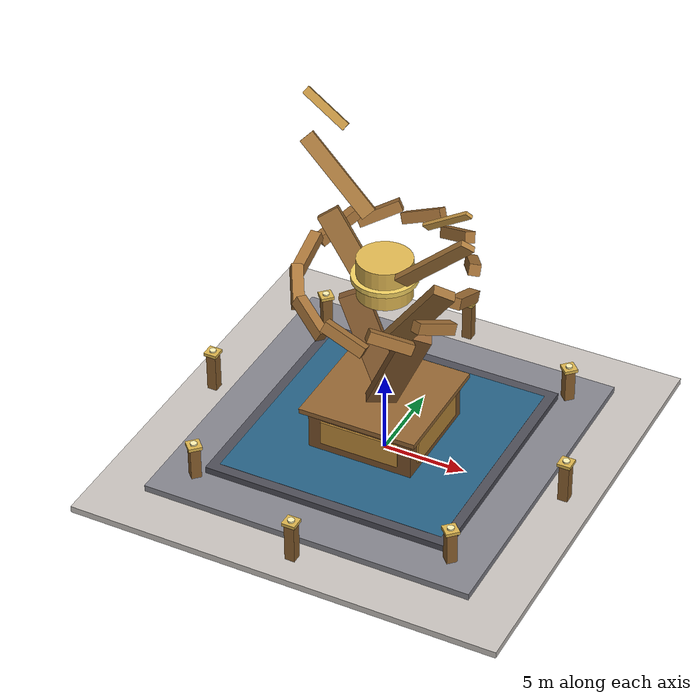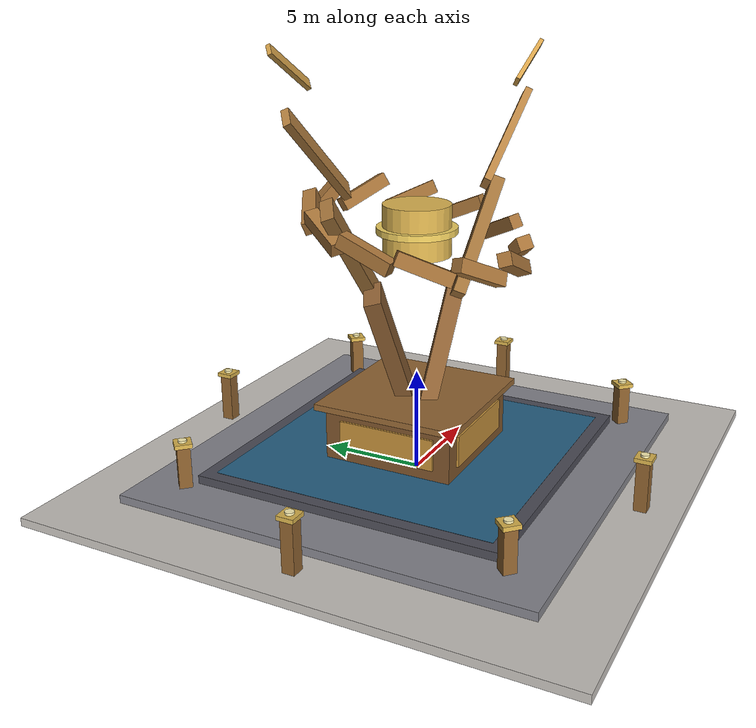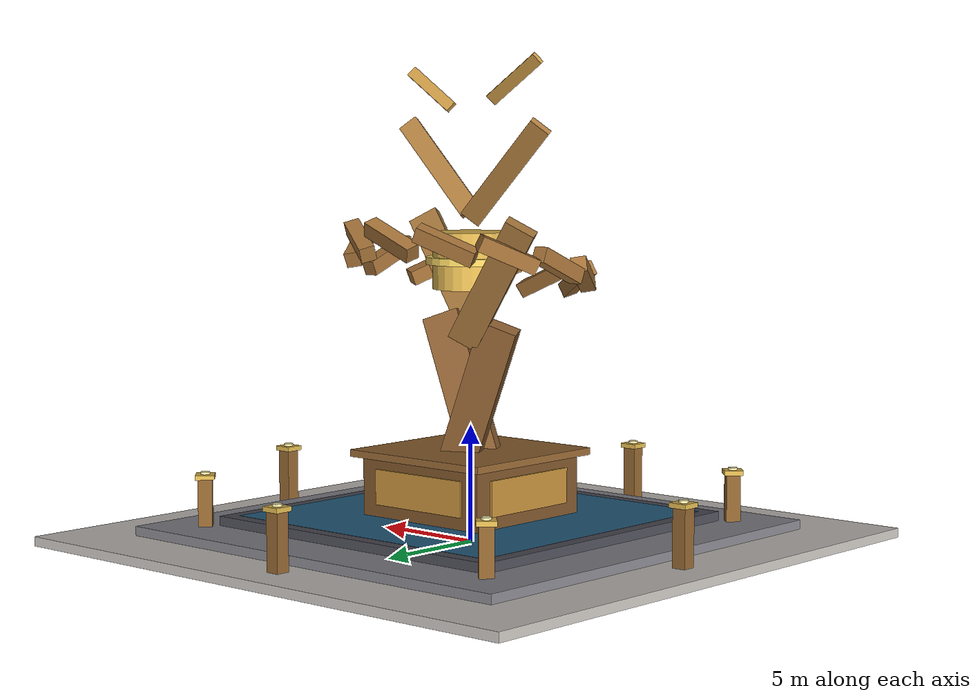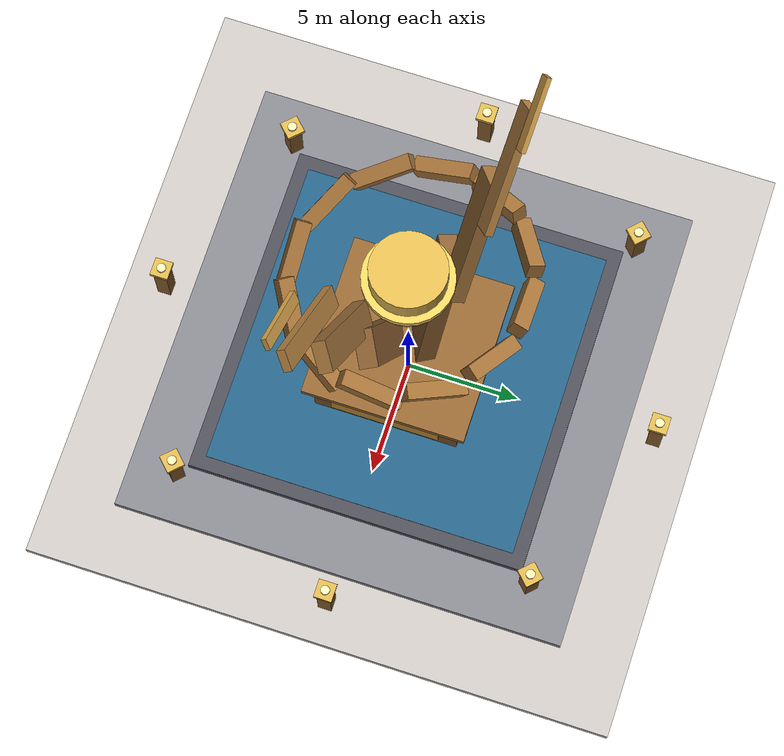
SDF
<?xml version="1.0" ?>
<sdf version="1.8">
  <model name="giant_bronze_sculpture_monument">
    <static>true</static>
    <link name="bronze_monument_link">
      <!-- 物理碰撞剛體 (三層花崗岩台座與中央基柱) -->
      <collision name="base_step1_col"><pose>0 0 0.2 0 0 0</pose><geometry><box><size>26.0 26.0 0.4</size></box></geometry></collision>
      <collision name="base_step2_col"><pose>0 0 0.6 0 0 0</pose><geometry><box><size>20.0 20.0 0.4</size></box></geometry></collision>
      <collision name="base_step3_col"><pose>0 0 1.0 0 0 0</pose><geometry><box><size>15.0 15.0 0.4</size></box></geometry></collision>
      <collision name="core_pedestal_col"><pose>0 0 2.5 0 0 0</pose><geometry><box><size>6.4 6.4 2.6</size></box></geometry></collision>
      <collision name="spire_trunk_col"><pose>0 0 6.5 0 0 0</pose><geometry><cylinder><radius>2.2</radius><length>6.0</length></cylinder></geometry></collision>
      <!-- 1. 三層八角同心花崗岩親水廣場基座 -->
      <visual name="base_step1_vis"><pose>0 0 0.2 0 0 0</pose><geometry><box><size>26.0 26.0 0.4</size></box></geometry><material><ambient>0.72 0.70 0.68 1</ambient><diffuse>0.78 0.76 0.74 1</diffuse><specular>0.3 0.3 0.3 1</specular></material></visual>
      <visual name="base_step2_vis"><pose>0 0 0.6 0 0 0</pose><geometry><box><size>20.0 20.0 0.4</size></box></geometry><material><ambient>0.45 0.45 0.48 1</ambient><diffuse>0.52 0.52 0.55 1</diffuse><specular>0.4 0.4 0.4 1</specular></material></visual>
      <visual name="base_step3_vis"><pose>0 0 1.0 0 0 0</pose><geometry><box><size>15.0 15.0 0.4</size></box></geometry><material><ambient>0.25 0.25 0.28 1</ambient><diffuse>0.30 0.30 0.34 1</diffuse><specular>0.6 0.6 0.6 1</specular></material></visual>
      <!-- 親水倒影鏡面水池池水 -->
      <visual name="reflecting_pool"><pose>0 0 1.21 0 0 0</pose><geometry><box><size>13.8 13.8 0.01</size></box></geometry><material><ambient>0.10 0.28 0.38 0.92</ambient><diffuse>0.15 0.38 0.52 0.92</diffuse><specular>0.95 0.98 1.0 1</specular></material></visual>
      <!-- 2. 中央重型鑄造青銅基柱與銘刻銘板 -->
      <visual name="bronze_core_pedestal"><pose>0 0 2.5 0 0 0</pose><geometry><box><size>6.4 6.4 2.6</size></box></geometry><material><ambient>0.32 0.20 0.10 1</ambient><diffuse>0.48 0.32 0.16 1</diffuse><specular>0.75 0.55 0.25 1</specular></material></visual>
      <visual name="pedestal_cornice"><pose>0 0 3.85 0 0 0</pose><geometry><box><size>7.2 7.2 0.3</size></box></geometry><material><ambient>0.40 0.26 0.12 1</ambient><diffuse>0.58 0.40 0.20 1</diffuse><specular>0.85 0.65 0.30 1</specular></material></visual>
      <visual name="plaque_s"><pose>0 -3.25 2.5 0 0 0</pose><geometry><box><size>4.8 0.12 1.5</size></box></geometry><material><ambient>0.55 0.38 0.15 1</ambient><diffuse>0.75 0.55 0.22 1</diffuse><specular>0.9 0.7 0.3 1</specular></material></visual>
      <visual name="plaque_n"><pose>0 3.25 2.5 0 0 0</pose><geometry><box><size>4.8 0.12 1.5</size></box></geometry><material><ambient>0.55 0.38 0.15 1</ambient><diffuse>0.75 0.55 0.22 1</diffuse><specular>0.9 0.7 0.3 1</specular></material></visual>
      <visual name="plaque_e"><pose>3.25 0 2.5 0 0 0</pose><geometry><box><size>0.12 4.8 1.5</size></box></geometry><material><ambient>0.55 0.38 0.15 1</ambient><diffuse>0.75 0.55 0.22 1</diffuse><specular>0.9 0.7 0.3 1</specular></material></visual>
      <visual name="plaque_w"><pose>-3.25 0 2.5 0 0 0</pose><geometry><box><size>0.12 4.8 1.5</size></box></geometry><material><ambient>0.55 0.38 0.15 1</ambient><diffuse>0.75 0.55 0.22 1</diffuse><specular>0.9 0.7 0.3 1</specular></material></visual>
      <!-- 3. 超級雙曲青銅神翼 (19.5m 壯麗青銅主羽翼) -->
      <visual name="wing_a_lower"><pose>1.2 -0.8 6.5 0.25 0.35 0.5</pose><geometry><box><size>1.6 0.8 6.5</size></box></geometry><material><ambient>0.36 0.22 0.12 1</ambient><diffuse>0.56 0.38 0.20 1</diffuse><specular>0.85 0.65 0.30 1</specular></material></visual>
      <visual name="wing_a_mid"><pose>2.8 -1.8 11.2 0.40 0.50 0.6</pose><geometry><box><size>1.3 0.6 6.0</size></box></geometry><material><ambient>0.42 0.28 0.14 1</ambient><diffuse>0.62 0.44 0.22 1</diffuse><specular>0.90 0.70 0.35 1</specular></material></visual>
      <visual name="wing_a_tip"><pose>4.2 -2.6 15.8 0.55 0.65 0.7</pose><geometry><box><size>0.9 0.35 5.5</size></box></geometry><material><ambient>0.48 0.32 0.16 1</ambient><diffuse>0.70 0.50 0.25 1</diffuse><specular>0.95 0.75 0.40 1</specular></material></visual>
      <visual name="wing_a_crest"><pose>5.2 -3.2 19.2 0.70 0.80 0.8</pose><geometry><box><size>0.5 0.2 3.0</size></box></geometry><material><ambient>0.58 0.42 0.18 1</ambient><diffuse>0.82 0.62 0.28 1</diffuse><specular>1.0 0.85 0.50 1</specular></material></visual>
      <!-- 翅膀 B (西北向巨型羽翼) -->
      <visual name="wing_b_lower"><pose>-1.2 0.8 6.5 -0.25 -0.35 0.5</pose><geometry><box><size>1.6 0.8 6.5</size></box></geometry><material><ambient>0.36 0.22 0.12 1</ambient><diffuse>0.56 0.38 0.20 1</diffuse><specular>0.85 0.65 0.30 1</specular></material></visual>
      <visual name="wing_b_mid"><pose>-2.8 1.8 11.2 -0.40 -0.50 0.6</pose><geometry><box><size>1.3 0.6 6.0</size></box></geometry><material><ambient>0.42 0.28 0.14 1</ambient><diffuse>0.62 0.44 0.22 1</diffuse><specular>0.90 0.70 0.35 1</specular></material></visual>
      <visual name="wing_b_tip"><pose>-4.2 2.6 15.8 -0.55 -0.65 0.7</pose><geometry><box><size>0.9 0.35 5.5</size></box></geometry><material><ambient>0.48 0.32 0.16 1</ambient><diffuse>0.70 0.50 0.25 1</diffuse><specular>0.95 0.75 0.40 1</specular></material></visual>
      <visual name="wing_b_crest"><pose>-5.2 3.2 19.5 -0.70 -0.80 0.8</pose><geometry><box><size>0.5 0.2 3.0</size></box></geometry><material><ambient>0.58 0.42 0.18 1</ambient><diffuse>0.82 0.62 0.28 1</diffuse><specular>1.0 0.85 0.50 1</specular></material></visual>
      <!-- 4. 巨型空中青銅莫比烏斯環 (直徑 10m 貫通天穹之環) -->
      <visual name="ring_seg_0"><pose>4.800 0.000 12.000 0.000 0.4 1.571</pose><geometry><box><size>2.6 0.65 0.65</size></box></geometry><material><ambient>0.42 0.28 0.14 1</ambient><diffuse>0.65 0.45 0.22 1</diffuse><specular>0.88 0.70 0.35 1</specular></material></visual>
      <visual name="ring_seg_1"><pose>4.157 2.400 12.525 0.175 0.4 2.094</pose><geometry><box><size>2.6 0.65 0.65</size></box></geometry><material><ambient>0.42 0.28 0.14 1</ambient><diffuse>0.65 0.45 0.22 1</diffuse><specular>0.88 0.70 0.35 1</specular></material></visual>
      <visual name="ring_seg_2"><pose>2.400 4.157 12.909 0.303 0.4 2.618</pose><geometry><box><size>2.6 0.65 0.65</size></box></geometry><material><ambient>0.42 0.28 0.14 1</ambient><diffuse>0.65 0.45 0.22 1</diffuse><specular>0.88 0.70 0.35 1</specular></material></visual>
      <visual name="ring_seg_3"><pose>0.000 4.800 13.050 0.350 0.4 3.142</pose><geometry><box><size>2.6 0.65 0.65</size></box></geometry><material><ambient>0.42 0.28 0.14 1</ambient><diffuse>0.65 0.45 0.22 1</diffuse><specular>0.88 0.70 0.35 1</specular></material></visual>
      <visual name="ring_seg_4"><pose>-2.400 4.157 12.909 0.303 0.4 3.665</pose><geometry><box><size>2.6 0.65 0.65</size></box></geometry><material><ambient>0.42 0.28 0.14 1</ambient><diffuse>0.65 0.45 0.22 1</diffuse><specular>0.88 0.70 0.35 1</specular></material></visual>
      <visual name="ring_seg_5"><pose>-4.157 2.400 12.525 0.175 0.4 4.189</pose><geometry><box><size>2.6 0.65 0.65</size></box></geometry><material><ambient>0.42 0.28 0.14 1</ambient><diffuse>0.65 0.45 0.22 1</diffuse><specular>0.88 0.70 0.35 1</specular></material></visual>
      <visual name="ring_seg_6"><pose>-4.800 0.000 12.000 0.000 0.4 4.712</pose><geometry><box><size>2.6 0.65 0.65</size></box></geometry><material><ambient>0.42 0.28 0.14 1</ambient><diffuse>0.65 0.45 0.22 1</diffuse><specular>0.88 0.70 0.35 1</specular></material></visual>
      <visual name="ring_seg_7"><pose>-4.157 -2.400 11.475 -0.175 0.4 5.236</pose><geometry><box><size>2.6 0.65 0.65</size></box></geometry><material><ambient>0.42 0.28 0.14 1</ambient><diffuse>0.65 0.45 0.22 1</diffuse><specular>0.88 0.70 0.35 1</specular></material></visual>
      <visual name="ring_seg_8"><pose>-2.400 -4.157 11.091 -0.303 0.4 5.760</pose><geometry><box><size>2.6 0.65 0.65</size></box></geometry><material><ambient>0.42 0.28 0.14 1</ambient><diffuse>0.65 0.45 0.22 1</diffuse><specular>0.88 0.70 0.35 1</specular></material></visual>
      <visual name="ring_seg_9"><pose>-0.000 -4.800 10.950 -0.350 0.4 6.283</pose><geometry><box><size>2.6 0.65 0.65</size></box></geometry><material><ambient>0.42 0.28 0.14 1</ambient><diffuse>0.65 0.45 0.22 1</diffuse><specular>0.88 0.70 0.35 1</specular></material></visual>
      <visual name="ring_seg_10"><pose>2.400 -4.157 11.091 -0.303 0.4 6.807</pose><geometry><box><size>2.6 0.65 0.65</size></box></geometry><material><ambient>0.42 0.28 0.14 1</ambient><diffuse>0.65 0.45 0.22 1</diffuse><specular>0.88 0.70 0.35 1</specular></material></visual>
      <visual name="ring_seg_11"><pose>4.157 -2.400 11.475 -0.175 0.4 7.330</pose><geometry><box><size>2.6 0.65 0.65</size></box></geometry><material><ambient>0.42 0.28 0.14 1</ambient><diffuse>0.65 0.45 0.22 1</diffuse><specular>0.88 0.70 0.35 1</specular></material></visual>
      <!-- 5. 核心拋光青銅晶球 ("新竹科技核心", 直徑 3.2m 耀眼青銅反射球) -->
      <visual name="bronze_core_sphere"><pose>0 0 12.0 0 0 0</pose><geometry><cylinder><radius>1.6</radius><length>2.4</length></cylinder></geometry><material><ambient>0.62 0.46 0.18 1</ambient><diffuse>0.88 0.72 0.32 1</diffuse><specular>1.0 0.95 0.70 1</specular></material></visual>
      <visual name="sphere_equator_band"><pose>0 0 12.0 0 0 0</pose><geometry><cylinder><radius>1.9</radius><length>0.3</length></cylinder></geometry><material><ambient>0.75 0.60 0.25 1</ambient><diffuse>0.95 0.82 0.38 1</diffuse><emissive>0.25 0.18 0.05 1</emissive></material></visual>
      <!-- 6. 八方青銅立柱與光雕基座 -->
      <collision name="stele_col_0"><pose>11.200 0.000 1.6 0 0 0.000</pose><geometry><box><size>0.6 0.6 2.4</size></box></geometry></collision>
      <visual name="stele_vis_0"><pose>11.200 0.000 1.6 0 0 0.000</pose><geometry><box><size>0.6 0.6 2.4</size></box></geometry><material><ambient>0.38 0.24 0.12 1</ambient><diffuse>0.55 0.38 0.18 1</diffuse><specular>0.8 0.6 0.3 1</specular></material></visual>
      <visual name="stele_cap_0"><pose>11.200 0.000 2.9 0 0 0.000</pose><geometry><box><size>0.8 0.8 0.2</size></box></geometry><material><ambient>0.65 0.50 0.20 1</ambient><diffuse>0.85 0.70 0.30 1</diffuse><specular>0.9 0.8 0.4 1</specular></material></visual>
      <visual name="stele_light_0"><pose>11.200 0.000 3.05 0 0 0</pose><geometry><cylinder><radius>0.2</radius><length>0.1</length></cylinder></geometry><material><ambient>0.9 0.85 0.6 1</ambient><diffuse>1.0 0.95 0.7 1</diffuse><emissive>0.8 0.7 0.3 1</emissive></material></visual>
      <collision name="stele_col_1"><pose>7.920 7.920 1.6 0 0 0.785</pose><geometry><box><size>0.6 0.6 2.4</size></box></geometry></collision>
      <visual name="stele_vis_1"><pose>7.920 7.920 1.6 0 0 0.785</pose><geometry><box><size>0.6 0.6 2.4</size></box></geometry><material><ambient>0.38 0.24 0.12 1</ambient><diffuse>0.55 0.38 0.18 1</diffuse><specular>0.8 0.6 0.3 1</specular></material></visual>
      <visual name="stele_cap_1"><pose>7.920 7.920 2.9 0 0 0.785</pose><geometry><box><size>0.8 0.8 0.2</size></box></geometry><material><ambient>0.65 0.50 0.20 1</ambient><diffuse>0.85 0.70 0.30 1</diffuse><specular>0.9 0.8 0.4 1</specular></material></visual>
      <visual name="stele_light_1"><pose>7.920 7.920 3.05 0 0 0</pose><geometry><cylinder><radius>0.2</radius><length>0.1</length></cylinder></geometry><material><ambient>0.9 0.85 0.6 1</ambient><diffuse>1.0 0.95 0.7 1</diffuse><emissive>0.8 0.7 0.3 1</emissive></material></visual>
      <collision name="stele_col_2"><pose>0.000 11.200 1.6 0 0 1.571</pose><geometry><box><size>0.6 0.6 2.4</size></box></geometry></collision>
      <visual name="stele_vis_2"><pose>0.000 11.200 1.6 0 0 1.571</pose><geometry><box><size>0.6 0.6 2.4</size></box></geometry><material><ambient>0.38 0.24 0.12 1</ambient><diffuse>0.55 0.38 0.18 1</diffuse><specular>0.8 0.6 0.3 1</specular></material></visual>
      <visual name="stele_cap_2"><pose>0.000 11.200 2.9 0 0 1.571</pose><geometry><box><size>0.8 0.8 0.2</size></box></geometry><material><ambient>0.65 0.50 0.20 1</ambient><diffuse>0.85 0.70 0.30 1</diffuse><specular>0.9 0.8 0.4 1</specular></material></visual>
      <visual name="stele_light_2"><pose>0.000 11.200 3.05 0 0 0</pose><geometry><cylinder><radius>0.2</radius><length>0.1</length></cylinder></geometry><material><ambient>0.9 0.85 0.6 1</ambient><diffuse>1.0 0.95 0.7 1</diffuse><emissive>0.8 0.7 0.3 1</emissive></material></visual>
      <collision name="stele_col_3"><pose>-7.920 7.920 1.6 0 0 2.356</pose><geometry><box><size>0.6 0.6 2.4</size></box></geometry></collision>
      <visual name="stele_vis_3"><pose>-7.920 7.920 1.6 0 0 2.356</pose><geometry><box><size>0.6 0.6 2.4</size></box></geometry><material><ambient>0.38 0.24 0.12 1</ambient><diffuse>0.55 0.38 0.18 1</diffuse><specular>0.8 0.6 0.3 1</specular></material></visual>
      <visual name="stele_cap_3"><pose>-7.920 7.920 2.9 0 0 2.356</pose><geometry><box><size>0.8 0.8 0.2</size></box></geometry><material><ambient>0.65 0.50 0.20 1</ambient><diffuse>0.85 0.70 0.30 1</diffuse><specular>0.9 0.8 0.4 1</specular></material></visual>
      <visual name="stele_light_3"><pose>-7.920 7.920 3.05 0 0 0</pose><geometry><cylinder><radius>0.2</radius><length>0.1</length></cylinder></geometry><material><ambient>0.9 0.85 0.6 1</ambient><diffuse>1.0 0.95 0.7 1</diffuse><emissive>0.8 0.7 0.3 1</emissive></material></visual>
      <collision name="stele_col_4"><pose>-11.200 0.000 1.6 0 0 3.142</pose><geometry><box><size>0.6 0.6 2.4</size></box></geometry></collision>
      <visual name="stele_vis_4"><pose>-11.200 0.000 1.6 0 0 3.142</pose><geometry><box><size>0.6 0.6 2.4</size></box></geometry><material><ambient>0.38 0.24 0.12 1</ambient><diffuse>0.55 0.38 0.18 1</diffuse><specular>0.8 0.6 0.3 1</specular></material></visual>
      <visual name="stele_cap_4"><pose>-11.200 0.000 2.9 0 0 3.142</pose><geometry><box><size>0.8 0.8 0.2</size></box></geometry><material><ambient>0.65 0.50 0.20 1</ambient><diffuse>0.85 0.70 0.30 1</diffuse><specular>0.9 0.8 0.4 1</specular></material></visual>
      <visual name="stele_light_4"><pose>-11.200 0.000 3.05 0 0 0</pose><geometry><cylinder><radius>0.2</radius><length>0.1</length></cylinder></geometry><material><ambient>0.9 0.85 0.6 1</ambient><diffuse>1.0 0.95 0.7 1</diffuse><emissive>0.8 0.7 0.3 1</emissive></material></visual>
      <collision name="stele_col_5"><pose>-7.920 -7.920 1.6 0 0 3.927</pose><geometry><box><size>0.6 0.6 2.4</size></box></geometry></collision>
      <visual name="stele_vis_5"><pose>-7.920 -7.920 1.6 0 0 3.927</pose><geometry><box><size>0.6 0.6 2.4</size></box></geometry><material><ambient>0.38 0.24 0.12 1</ambient><diffuse>0.55 0.38 0.18 1</diffuse><specular>0.8 0.6 0.3 1</specular></material></visual>
      <visual name="stele_cap_5"><pose>-7.920 -7.920 2.9 0 0 3.927</pose><geometry><box><size>0.8 0.8 0.2</size></box></geometry><material><ambient>0.65 0.50 0.20 1</ambient><diffuse>0.85 0.70 0.30 1</diffuse><specular>0.9 0.8 0.4 1</specular></material></visual>
      <visual name="stele_light_5"><pose>-7.920 -7.920 3.05 0 0 0</pose><geometry><cylinder><radius>0.2</radius><length>0.1</length></cylinder></geometry><material><ambient>0.9 0.85 0.6 1</ambient><diffuse>1.0 0.95 0.7 1</diffuse><emissive>0.8 0.7 0.3 1</emissive></material></visual>
      <collision name="stele_col_6"><pose>-0.000 -11.200 1.6 0 0 4.712</pose><geometry><box><size>0.6 0.6 2.4</size></box></geometry></collision>
      <visual name="stele_vis_6"><pose>-0.000 -11.200 1.6 0 0 4.712</pose><geometry><box><size>0.6 0.6 2.4</size></box></geometry><material><ambient>0.38 0.24 0.12 1</ambient><diffuse>0.55 0.38 0.18 1</diffuse><specular>0.8 0.6 0.3 1</specular></material></visual>
      <visual name="stele_cap_6"><pose>-0.000 -11.200 2.9 0 0 4.712</pose><geometry><box><size>0.8 0.8 0.2</size></box></geometry><material><ambient>0.65 0.50 0.20 1</ambient><diffuse>0.85 0.70 0.30 1</diffuse><specular>0.9 0.8 0.4 1</specular></material></visual>
      <visual name="stele_light_6"><pose>-0.000 -11.200 3.05 0 0 0</pose><geometry><cylinder><radius>0.2</radius><length>0.1</length></cylinder></geometry><material><ambient>0.9 0.85 0.6 1</ambient><diffuse>1.0 0.95 0.7 1</diffuse><emissive>0.8 0.7 0.3 1</emissive></material></visual>
      <collision name="stele_col_7"><pose>7.920 -7.920 1.6 0 0 5.498</pose><geometry><box><size>0.6 0.6 2.4</size></box></geometry></collision>
      <visual name="stele_vis_7"><pose>7.920 -7.920 1.6 0 0 5.498</pose><geometry><box><size>0.6 0.6 2.4</size></box></geometry><material><ambient>0.38 0.24 0.12 1</ambient><diffuse>0.55 0.38 0.18 1</diffuse><specular>0.8 0.6 0.3 1</specular></material></visual>
      <visual name="stele_cap_7"><pose>7.920 -7.920 2.9 0 0 5.498</pose><geometry><box><size>0.8 0.8 0.2</size></box></geometry><material><ambient>0.65 0.50 0.20 1</ambient><diffuse>0.85 0.70 0.30 1</diffuse><specular>0.9 0.8 0.4 1</specular></material></visual>
      <visual name="stele_light_7"><pose>7.920 -7.920 3.05 0 0 0</pose><geometry><cylinder><radius>0.2</radius><length>0.1</length></cylinder></geometry><material><ambient>0.9 0.85 0.6 1</ambient><diffuse>1.0 0.95 0.7 1</diffuse><emissive>0.8 0.7 0.3 1</emissive></material></visual>
    </link>
  </model>
</sdf>
